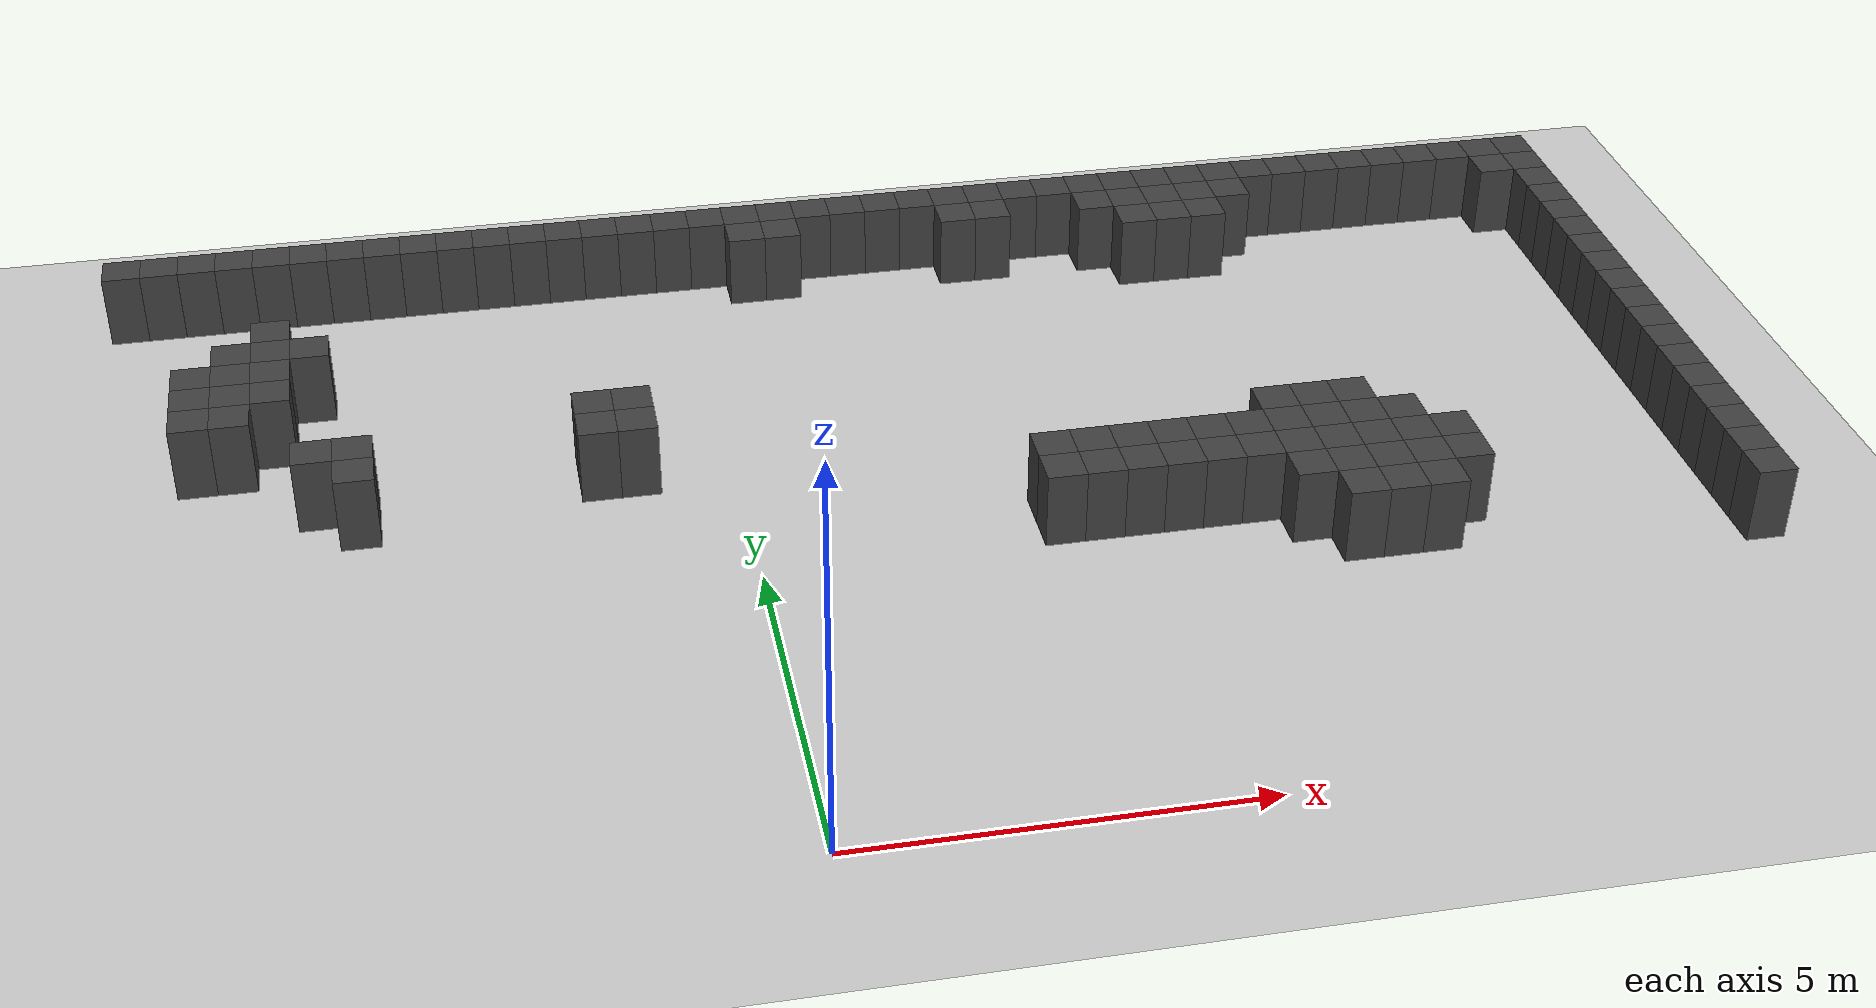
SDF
<sdf version="1.7">
 <world name="map_5009">
  <model name="ground_plane">
   <static>true</static>
   <link name="link">
    <collision name="collision">
     <geometry><plane><normal>0 0 1</normal><size>200 200</size></plane></geometry>
    </collision>
    <visual name="visual">
     <geometry><plane><normal>0 0 1</normal><size>200 200</size></plane></geometry>
     <material><ambient>0.8 0.8 0.8 1</ambient><diffuse>0.8 0.8 0.8 1</diffuse></material>
    </visual>
   </link>
  </model>
  <model name="maze_environment">
   <static>true</static>
   <link name="wall_9">
    <pose>-7.750 12.250 0.500 0 0 0</pose>
    <collision name="col"><geometry><box><size>0.5 0.5 1.0</size></box></geometry></collision>
    <visual name="vis">
     <geometry><box><size>0.5 0.5 1.0</size></box></geometry>
     <material><ambient>0.15 0.15 0.15 1</ambient><diffuse>0.25 0.25 0.25 1</diffuse></material>
    </visual>
   </link>
   <link name="wall_10">
    <pose>-7.250 12.250 0.500 0 0 0</pose>
    <collision name="col"><geometry><box><size>0.5 0.5 1.0</size></box></geometry></collision>
    <visual name="vis">
     <geometry><box><size>0.5 0.5 1.0</size></box></geometry>
     <material><ambient>0.15 0.15 0.15 1</ambient><diffuse>0.25 0.25 0.25 1</diffuse></material>
    </visual>
   </link>
   <link name="wall_11">
    <pose>-6.750 12.250 0.500 0 0 0</pose>
    <collision name="col"><geometry><box><size>0.5 0.5 1.0</size></box></geometry></collision>
    <visual name="vis">
     <geometry><box><size>0.5 0.5 1.0</size></box></geometry>
     <material><ambient>0.15 0.15 0.15 1</ambient><diffuse>0.25 0.25 0.25 1</diffuse></material>
    </visual>
   </link>
   <link name="wall_12">
    <pose>-6.250 12.250 0.500 0 0 0</pose>
    <collision name="col"><geometry><box><size>0.5 0.5 1.0</size></box></geometry></collision>
    <visual name="vis">
     <geometry><box><size>0.5 0.5 1.0</size></box></geometry>
     <material><ambient>0.15 0.15 0.15 1</ambient><diffuse>0.25 0.25 0.25 1</diffuse></material>
    </visual>
   </link>
   <link name="wall_13">
    <pose>-5.750 12.250 0.500 0 0 0</pose>
    <collision name="col"><geometry><box><size>0.5 0.5 1.0</size></box></geometry></collision>
    <visual name="vis">
     <geometry><box><size>0.5 0.5 1.0</size></box></geometry>
     <material><ambient>0.15 0.15 0.15 1</ambient><diffuse>0.25 0.25 0.25 1</diffuse></material>
    </visual>
   </link>
   <link name="wall_14">
    <pose>-5.250 12.250 0.500 0 0 0</pose>
    <collision name="col"><geometry><box><size>0.5 0.5 1.0</size></box></geometry></collision>
    <visual name="vis">
     <geometry><box><size>0.5 0.5 1.0</size></box></geometry>
     <material><ambient>0.15 0.15 0.15 1</ambient><diffuse>0.25 0.25 0.25 1</diffuse></material>
    </visual>
   </link>
   <link name="wall_15">
    <pose>-4.750 12.250 0.500 0 0 0</pose>
    <collision name="col"><geometry><box><size>0.5 0.5 1.0</size></box></geometry></collision>
    <visual name="vis">
     <geometry><box><size>0.5 0.5 1.0</size></box></geometry>
     <material><ambient>0.15 0.15 0.15 1</ambient><diffuse>0.25 0.25 0.25 1</diffuse></material>
    </visual>
   </link>
   <link name="wall_16">
    <pose>-4.250 12.250 0.500 0 0 0</pose>
    <collision name="col"><geometry><box><size>0.5 0.5 1.0</size></box></geometry></collision>
    <visual name="vis">
     <geometry><box><size>0.5 0.5 1.0</size></box></geometry>
     <material><ambient>0.15 0.15 0.15 1</ambient><diffuse>0.25 0.25 0.25 1</diffuse></material>
    </visual>
   </link>
   <link name="wall_17">
    <pose>-3.750 12.250 0.500 0 0 0</pose>
    <collision name="col"><geometry><box><size>0.5 0.5 1.0</size></box></geometry></collision>
    <visual name="vis">
     <geometry><box><size>0.5 0.5 1.0</size></box></geometry>
     <material><ambient>0.15 0.15 0.15 1</ambient><diffuse>0.25 0.25 0.25 1</diffuse></material>
    </visual>
   </link>
   <link name="wall_18">
    <pose>-3.250 12.250 0.500 0 0 0</pose>
    <collision name="col"><geometry><box><size>0.5 0.5 1.0</size></box></geometry></collision>
    <visual name="vis">
     <geometry><box><size>0.5 0.5 1.0</size></box></geometry>
     <material><ambient>0.15 0.15 0.15 1</ambient><diffuse>0.25 0.25 0.25 1</diffuse></material>
    </visual>
   </link>
   <link name="wall_19">
    <pose>-2.750 12.250 0.500 0 0 0</pose>
    <collision name="col"><geometry><box><size>0.5 0.5 1.0</size></box></geometry></collision>
    <visual name="vis">
     <geometry><box><size>0.5 0.5 1.0</size></box></geometry>
     <material><ambient>0.15 0.15 0.15 1</ambient><diffuse>0.25 0.25 0.25 1</diffuse></material>
    </visual>
   </link>
   <link name="wall_20">
    <pose>-2.250 12.250 0.500 0 0 0</pose>
    <collision name="col"><geometry><box><size>0.5 0.5 1.0</size></box></geometry></collision>
    <visual name="vis">
     <geometry><box><size>0.5 0.5 1.0</size></box></geometry>
     <material><ambient>0.15 0.15 0.15 1</ambient><diffuse>0.25 0.25 0.25 1</diffuse></material>
    </visual>
   </link>
   <link name="wall_21">
    <pose>-1.750 12.250 0.500 0 0 0</pose>
    <collision name="col"><geometry><box><size>0.5 0.5 1.0</size></box></geometry></collision>
    <visual name="vis">
     <geometry><box><size>0.5 0.5 1.0</size></box></geometry>
     <material><ambient>0.15 0.15 0.15 1</ambient><diffuse>0.25 0.25 0.25 1</diffuse></material>
    </visual>
   </link>
   <link name="wall_22">
    <pose>-1.250 12.250 0.500 0 0 0</pose>
    <collision name="col"><geometry><box><size>0.5 0.5 1.0</size></box></geometry></collision>
    <visual name="vis">
     <geometry><box><size>0.5 0.5 1.0</size></box></geometry>
     <material><ambient>0.15 0.15 0.15 1</ambient><diffuse>0.25 0.25 0.25 1</diffuse></material>
    </visual>
   </link>
   <link name="wall_23">
    <pose>-0.750 12.250 0.500 0 0 0</pose>
    <collision name="col"><geometry><box><size>0.5 0.5 1.0</size></box></geometry></collision>
    <visual name="vis">
     <geometry><box><size>0.5 0.5 1.0</size></box></geometry>
     <material><ambient>0.15 0.15 0.15 1</ambient><diffuse>0.25 0.25 0.25 1</diffuse></material>
    </visual>
   </link>
   <link name="wall_24">
    <pose>-0.250 12.250 0.500 0 0 0</pose>
    <collision name="col"><geometry><box><size>0.5 0.5 1.0</size></box></geometry></collision>
    <visual name="vis">
     <geometry><box><size>0.5 0.5 1.0</size></box></geometry>
     <material><ambient>0.15 0.15 0.15 1</ambient><diffuse>0.25 0.25 0.25 1</diffuse></material>
    </visual>
   </link>
   <link name="wall_25">
    <pose>0.250 12.250 0.500 0 0 0</pose>
    <collision name="col"><geometry><box><size>0.5 0.5 1.0</size></box></geometry></collision>
    <visual name="vis">
     <geometry><box><size>0.5 0.5 1.0</size></box></geometry>
     <material><ambient>0.15 0.15 0.15 1</ambient><diffuse>0.25 0.25 0.25 1</diffuse></material>
    </visual>
   </link>
   <link name="wall_26">
    <pose>0.750 12.250 0.500 0 0 0</pose>
    <collision name="col"><geometry><box><size>0.5 0.5 1.0</size></box></geometry></collision>
    <visual name="vis">
     <geometry><box><size>0.5 0.5 1.0</size></box></geometry>
     <material><ambient>0.15 0.15 0.15 1</ambient><diffuse>0.25 0.25 0.25 1</diffuse></material>
    </visual>
   </link>
   <link name="wall_27">
    <pose>1.250 12.250 0.500 0 0 0</pose>
    <collision name="col"><geometry><box><size>0.5 0.5 1.0</size></box></geometry></collision>
    <visual name="vis">
     <geometry><box><size>0.5 0.5 1.0</size></box></geometry>
     <material><ambient>0.15 0.15 0.15 1</ambient><diffuse>0.25 0.25 0.25 1</diffuse></material>
    </visual>
   </link>
   <link name="wall_28">
    <pose>1.750 12.250 0.500 0 0 0</pose>
    <collision name="col"><geometry><box><size>0.5 0.5 1.0</size></box></geometry></collision>
    <visual name="vis">
     <geometry><box><size>0.5 0.5 1.0</size></box></geometry>
     <material><ambient>0.15 0.15 0.15 1</ambient><diffuse>0.25 0.25 0.25 1</diffuse></material>
    </visual>
   </link>
   <link name="wall_29">
    <pose>2.250 12.250 0.500 0 0 0</pose>
    <collision name="col"><geometry><box><size>0.5 0.5 1.0</size></box></geometry></collision>
    <visual name="vis">
     <geometry><box><size>0.5 0.5 1.0</size></box></geometry>
     <material><ambient>0.15 0.15 0.15 1</ambient><diffuse>0.25 0.25 0.25 1</diffuse></material>
    </visual>
   </link>
   <link name="wall_30">
    <pose>2.750 12.250 0.500 0 0 0</pose>
    <collision name="col"><geometry><box><size>0.5 0.5 1.0</size></box></geometry></collision>
    <visual name="vis">
     <geometry><box><size>0.5 0.5 1.0</size></box></geometry>
     <material><ambient>0.15 0.15 0.15 1</ambient><diffuse>0.25 0.25 0.25 1</diffuse></material>
    </visual>
   </link>
   <link name="wall_31">
    <pose>3.250 12.250 0.500 0 0 0</pose>
    <collision name="col"><geometry><box><size>0.5 0.5 1.0</size></box></geometry></collision>
    <visual name="vis">
     <geometry><box><size>0.5 0.5 1.0</size></box></geometry>
     <material><ambient>0.15 0.15 0.15 1</ambient><diffuse>0.25 0.25 0.25 1</diffuse></material>
    </visual>
   </link>
   <link name="wall_32">
    <pose>3.750 12.250 0.500 0 0 0</pose>
    <collision name="col"><geometry><box><size>0.5 0.5 1.0</size></box></geometry></collision>
    <visual name="vis">
     <geometry><box><size>0.5 0.5 1.0</size></box></geometry>
     <material><ambient>0.15 0.15 0.15 1</ambient><diffuse>0.25 0.25 0.25 1</diffuse></material>
    </visual>
   </link>
   <link name="wall_33">
    <pose>4.250 12.250 0.500 0 0 0</pose>
    <collision name="col"><geometry><box><size>0.5 0.5 1.0</size></box></geometry></collision>
    <visual name="vis">
     <geometry><box><size>0.5 0.5 1.0</size></box></geometry>
     <material><ambient>0.15 0.15 0.15 1</ambient><diffuse>0.25 0.25 0.25 1</diffuse></material>
    </visual>
   </link>
   <link name="wall_34">
    <pose>4.750 12.250 0.500 0 0 0</pose>
    <collision name="col"><geometry><box><size>0.5 0.5 1.0</size></box></geometry></collision>
    <visual name="vis">
     <geometry><box><size>0.5 0.5 1.0</size></box></geometry>
     <material><ambient>0.15 0.15 0.15 1</ambient><diffuse>0.25 0.25 0.25 1</diffuse></material>
    </visual>
   </link>
   <link name="wall_35">
    <pose>5.250 12.250 0.500 0 0 0</pose>
    <collision name="col"><geometry><box><size>0.5 0.5 1.0</size></box></geometry></collision>
    <visual name="vis">
     <geometry><box><size>0.5 0.5 1.0</size></box></geometry>
     <material><ambient>0.15 0.15 0.15 1</ambient><diffuse>0.25 0.25 0.25 1</diffuse></material>
    </visual>
   </link>
   <link name="wall_36">
    <pose>5.750 12.250 0.500 0 0 0</pose>
    <collision name="col"><geometry><box><size>0.5 0.5 1.0</size></box></geometry></collision>
    <visual name="vis">
     <geometry><box><size>0.5 0.5 1.0</size></box></geometry>
     <material><ambient>0.15 0.15 0.15 1</ambient><diffuse>0.25 0.25 0.25 1</diffuse></material>
    </visual>
   </link>
   <link name="wall_37">
    <pose>6.250 12.250 0.500 0 0 0</pose>
    <collision name="col"><geometry><box><size>0.5 0.5 1.0</size></box></geometry></collision>
    <visual name="vis">
     <geometry><box><size>0.5 0.5 1.0</size></box></geometry>
     <material><ambient>0.15 0.15 0.15 1</ambient><diffuse>0.25 0.25 0.25 1</diffuse></material>
    </visual>
   </link>
   <link name="wall_38">
    <pose>6.750 12.250 0.500 0 0 0</pose>
    <collision name="col"><geometry><box><size>0.5 0.5 1.0</size></box></geometry></collision>
    <visual name="vis">
     <geometry><box><size>0.5 0.5 1.0</size></box></geometry>
     <material><ambient>0.15 0.15 0.15 1</ambient><diffuse>0.25 0.25 0.25 1</diffuse></material>
    </visual>
   </link>
   <link name="wall_39">
    <pose>7.250 12.250 0.500 0 0 0</pose>
    <collision name="col"><geometry><box><size>0.5 0.5 1.0</size></box></geometry></collision>
    <visual name="vis">
     <geometry><box><size>0.5 0.5 1.0</size></box></geometry>
     <material><ambient>0.15 0.15 0.15 1</ambient><diffuse>0.25 0.25 0.25 1</diffuse></material>
    </visual>
   </link>
   <link name="wall_40">
    <pose>7.750 12.250 0.500 0 0 0</pose>
    <collision name="col"><geometry><box><size>0.5 0.5 1.0</size></box></geometry></collision>
    <visual name="vis">
     <geometry><box><size>0.5 0.5 1.0</size></box></geometry>
     <material><ambient>0.15 0.15 0.15 1</ambient><diffuse>0.25 0.25 0.25 1</diffuse></material>
    </visual>
   </link>
   <link name="wall_41">
    <pose>8.250 12.250 0.500 0 0 0</pose>
    <collision name="col"><geometry><box><size>0.5 0.5 1.0</size></box></geometry></collision>
    <visual name="vis">
     <geometry><box><size>0.5 0.5 1.0</size></box></geometry>
     <material><ambient>0.15 0.15 0.15 1</ambient><diffuse>0.25 0.25 0.25 1</diffuse></material>
    </visual>
   </link>
   <link name="wall_42">
    <pose>8.750 12.250 0.500 0 0 0</pose>
    <collision name="col"><geometry><box><size>0.5 0.5 1.0</size></box></geometry></collision>
    <visual name="vis">
     <geometry><box><size>0.5 0.5 1.0</size></box></geometry>
     <material><ambient>0.15 0.15 0.15 1</ambient><diffuse>0.25 0.25 0.25 1</diffuse></material>
    </visual>
   </link>
   <link name="wall_43">
    <pose>9.250 12.250 0.500 0 0 0</pose>
    <collision name="col"><geometry><box><size>0.5 0.5 1.0</size></box></geometry></collision>
    <visual name="vis">
     <geometry><box><size>0.5 0.5 1.0</size></box></geometry>
     <material><ambient>0.15 0.15 0.15 1</ambient><diffuse>0.25 0.25 0.25 1</diffuse></material>
    </visual>
   </link>
   <link name="wall_44">
    <pose>9.750 12.250 0.500 0 0 0</pose>
    <collision name="col"><geometry><box><size>0.5 0.5 1.0</size></box></geometry></collision>
    <visual name="vis">
     <geometry><box><size>0.5 0.5 1.0</size></box></geometry>
     <material><ambient>0.15 0.15 0.15 1</ambient><diffuse>0.25 0.25 0.25 1</diffuse></material>
    </visual>
   </link>
   <link name="wall_45">
    <pose>10.250 12.250 0.500 0 0 0</pose>
    <collision name="col"><geometry><box><size>0.5 0.5 1.0</size></box></geometry></collision>
    <visual name="vis">
     <geometry><box><size>0.5 0.5 1.0</size></box></geometry>
     <material><ambient>0.15 0.15 0.15 1</ambient><diffuse>0.25 0.25 0.25 1</diffuse></material>
    </visual>
   </link>
   <link name="wall_46">
    <pose>10.750 12.250 0.500 0 0 0</pose>
    <collision name="col"><geometry><box><size>0.5 0.5 1.0</size></box></geometry></collision>
    <visual name="vis">
     <geometry><box><size>0.5 0.5 1.0</size></box></geometry>
     <material><ambient>0.15 0.15 0.15 1</ambient><diffuse>0.25 0.25 0.25 1</diffuse></material>
    </visual>
   </link>
   <link name="wall_47">
    <pose>11.250 12.250 0.500 0 0 0</pose>
    <collision name="col"><geometry><box><size>0.5 0.5 1.0</size></box></geometry></collision>
    <visual name="vis">
     <geometry><box><size>0.5 0.5 1.0</size></box></geometry>
     <material><ambient>0.15 0.15 0.15 1</ambient><diffuse>0.25 0.25 0.25 1</diffuse></material>
    </visual>
   </link>
   <link name="wall_48">
    <pose>11.750 12.250 0.500 0 0 0</pose>
    <collision name="col"><geometry><box><size>0.5 0.5 1.0</size></box></geometry></collision>
    <visual name="vis">
     <geometry><box><size>0.5 0.5 1.0</size></box></geometry>
     <material><ambient>0.15 0.15 0.15 1</ambient><diffuse>0.25 0.25 0.25 1</diffuse></material>
    </visual>
   </link>
   <link name="wall_49">
    <pose>12.250 12.250 0.500 0 0 0</pose>
    <collision name="col"><geometry><box><size>0.5 0.5 1.0</size></box></geometry></collision>
    <visual name="vis">
     <geometry><box><size>0.5 0.5 1.0</size></box></geometry>
     <material><ambient>0.15 0.15 0.15 1</ambient><diffuse>0.25 0.25 0.25 1</diffuse></material>
    </visual>
   </link>
   <link name="wall_51">
    <pose>0.750 11.750 0.500 0 0 0</pose>
    <collision name="col"><geometry><box><size>0.5 0.5 1.0</size></box></geometry></collision>
    <visual name="vis">
     <geometry><box><size>0.5 0.5 1.0</size></box></geometry>
     <material><ambient>0.15 0.15 0.15 1</ambient><diffuse>0.25 0.25 0.25 1</diffuse></material>
    </visual>
   </link>
   <link name="wall_52">
    <pose>1.250 11.750 0.500 0 0 0</pose>
    <collision name="col"><geometry><box><size>0.5 0.5 1.0</size></box></geometry></collision>
    <visual name="vis">
     <geometry><box><size>0.5 0.5 1.0</size></box></geometry>
     <material><ambient>0.15 0.15 0.15 1</ambient><diffuse>0.25 0.25 0.25 1</diffuse></material>
    </visual>
   </link>
   <link name="wall_53">
    <pose>3.750 11.750 0.500 0 0 0</pose>
    <collision name="col"><geometry><box><size>0.5 0.5 1.0</size></box></geometry></collision>
    <visual name="vis">
     <geometry><box><size>0.5 0.5 1.0</size></box></geometry>
     <material><ambient>0.15 0.15 0.15 1</ambient><diffuse>0.25 0.25 0.25 1</diffuse></material>
    </visual>
   </link>
   <link name="wall_54">
    <pose>4.250 11.750 0.500 0 0 0</pose>
    <collision name="col"><geometry><box><size>0.5 0.5 1.0</size></box></geometry></collision>
    <visual name="vis">
     <geometry><box><size>0.5 0.5 1.0</size></box></geometry>
     <material><ambient>0.15 0.15 0.15 1</ambient><diffuse>0.25 0.25 0.25 1</diffuse></material>
    </visual>
   </link>
   <link name="wall_55">
    <pose>5.750 11.750 0.500 0 0 0</pose>
    <collision name="col"><geometry><box><size>0.5 0.5 1.0</size></box></geometry></collision>
    <visual name="vis">
     <geometry><box><size>0.5 0.5 1.0</size></box></geometry>
     <material><ambient>0.15 0.15 0.15 1</ambient><diffuse>0.25 0.25 0.25 1</diffuse></material>
    </visual>
   </link>
   <link name="wall_56">
    <pose>6.250 11.750 0.500 0 0 0</pose>
    <collision name="col"><geometry><box><size>0.5 0.5 1.0</size></box></geometry></collision>
    <visual name="vis">
     <geometry><box><size>0.5 0.5 1.0</size></box></geometry>
     <material><ambient>0.15 0.15 0.15 1</ambient><diffuse>0.25 0.25 0.25 1</diffuse></material>
    </visual>
   </link>
   <link name="wall_57">
    <pose>6.750 11.750 0.500 0 0 0</pose>
    <collision name="col"><geometry><box><size>0.5 0.5 1.0</size></box></geometry></collision>
    <visual name="vis">
     <geometry><box><size>0.5 0.5 1.0</size></box></geometry>
     <material><ambient>0.15 0.15 0.15 1</ambient><diffuse>0.25 0.25 0.25 1</diffuse></material>
    </visual>
   </link>
   <link name="wall_58">
    <pose>7.250 11.750 0.500 0 0 0</pose>
    <collision name="col"><geometry><box><size>0.5 0.5 1.0</size></box></geometry></collision>
    <visual name="vis">
     <geometry><box><size>0.5 0.5 1.0</size></box></geometry>
     <material><ambient>0.15 0.15 0.15 1</ambient><diffuse>0.25 0.25 0.25 1</diffuse></material>
    </visual>
   </link>
   <link name="wall_59">
    <pose>7.750 11.750 0.500 0 0 0</pose>
    <collision name="col"><geometry><box><size>0.5 0.5 1.0</size></box></geometry></collision>
    <visual name="vis">
     <geometry><box><size>0.5 0.5 1.0</size></box></geometry>
     <material><ambient>0.15 0.15 0.15 1</ambient><diffuse>0.25 0.25 0.25 1</diffuse></material>
    </visual>
   </link>
   <link name="wall_60">
    <pose>11.750 11.750 0.500 0 0 0</pose>
    <collision name="col"><geometry><box><size>0.5 0.5 1.0</size></box></geometry></collision>
    <visual name="vis">
     <geometry><box><size>0.5 0.5 1.0</size></box></geometry>
     <material><ambient>0.15 0.15 0.15 1</ambient><diffuse>0.25 0.25 0.25 1</diffuse></material>
    </visual>
   </link>
   <link name="wall_61">
    <pose>12.250 11.750 0.500 0 0 0</pose>
    <collision name="col"><geometry><box><size>0.5 0.5 1.0</size></box></geometry></collision>
    <visual name="vis">
     <geometry><box><size>0.5 0.5 1.0</size></box></geometry>
     <material><ambient>0.15 0.15 0.15 1</ambient><diffuse>0.25 0.25 0.25 1</diffuse></material>
    </visual>
   </link>
   <link name="wall_63">
    <pose>6.250 11.250 0.500 0 0 0</pose>
    <collision name="col"><geometry><box><size>0.5 0.5 1.0</size></box></geometry></collision>
    <visual name="vis">
     <geometry><box><size>0.5 0.5 1.0</size></box></geometry>
     <material><ambient>0.15 0.15 0.15 1</ambient><diffuse>0.25 0.25 0.25 1</diffuse></material>
    </visual>
   </link>
   <link name="wall_64">
    <pose>6.750 11.250 0.500 0 0 0</pose>
    <collision name="col"><geometry><box><size>0.5 0.5 1.0</size></box></geometry></collision>
    <visual name="vis">
     <geometry><box><size>0.5 0.5 1.0</size></box></geometry>
     <material><ambient>0.15 0.15 0.15 1</ambient><diffuse>0.25 0.25 0.25 1</diffuse></material>
    </visual>
   </link>
   <link name="wall_65">
    <pose>7.250 11.250 0.500 0 0 0</pose>
    <collision name="col"><geometry><box><size>0.5 0.5 1.0</size></box></geometry></collision>
    <visual name="vis">
     <geometry><box><size>0.5 0.5 1.0</size></box></geometry>
     <material><ambient>0.15 0.15 0.15 1</ambient><diffuse>0.25 0.25 0.25 1</diffuse></material>
    </visual>
   </link>
   <link name="wall_66">
    <pose>12.250 11.250 0.500 0 0 0</pose>
    <collision name="col"><geometry><box><size>0.5 0.5 1.0</size></box></geometry></collision>
    <visual name="vis">
     <geometry><box><size>0.5 0.5 1.0</size></box></geometry>
     <material><ambient>0.15 0.15 0.15 1</ambient><diffuse>0.25 0.25 0.25 1</diffuse></material>
    </visual>
   </link>
   <link name="wall_68">
    <pose>12.250 10.750 0.500 0 0 0</pose>
    <collision name="col"><geometry><box><size>0.5 0.5 1.0</size></box></geometry></collision>
    <visual name="vis">
     <geometry><box><size>0.5 0.5 1.0</size></box></geometry>
     <material><ambient>0.15 0.15 0.15 1</ambient><diffuse>0.25 0.25 0.25 1</diffuse></material>
    </visual>
   </link>
   <link name="wall_70">
    <pose>-5.750 10.250 0.500 0 0 0</pose>
    <collision name="col"><geometry><box><size>0.5 0.5 1.0</size></box></geometry></collision>
    <visual name="vis">
     <geometry><box><size>0.5 0.5 1.0</size></box></geometry>
     <material><ambient>0.15 0.15 0.15 1</ambient><diffuse>0.25 0.25 0.25 1</diffuse></material>
    </visual>
   </link>
   <link name="wall_71">
    <pose>12.250 10.250 0.500 0 0 0</pose>
    <collision name="col"><geometry><box><size>0.5 0.5 1.0</size></box></geometry></collision>
    <visual name="vis">
     <geometry><box><size>0.5 0.5 1.0</size></box></geometry>
     <material><ambient>0.15 0.15 0.15 1</ambient><diffuse>0.25 0.25 0.25 1</diffuse></material>
    </visual>
   </link>
   <link name="wall_73">
    <pose>-6.250 9.750 0.500 0 0 0</pose>
    <collision name="col"><geometry><box><size>0.5 0.5 1.0</size></box></geometry></collision>
    <visual name="vis">
     <geometry><box><size>0.5 0.5 1.0</size></box></geometry>
     <material><ambient>0.15 0.15 0.15 1</ambient><diffuse>0.25 0.25 0.25 1</diffuse></material>
    </visual>
   </link>
   <link name="wall_74">
    <pose>-5.750 9.750 0.500 0 0 0</pose>
    <collision name="col"><geometry><box><size>0.5 0.5 1.0</size></box></geometry></collision>
    <visual name="vis">
     <geometry><box><size>0.5 0.5 1.0</size></box></geometry>
     <material><ambient>0.15 0.15 0.15 1</ambient><diffuse>0.25 0.25 0.25 1</diffuse></material>
    </visual>
   </link>
   <link name="wall_75">
    <pose>-5.250 9.750 0.500 0 0 0</pose>
    <collision name="col"><geometry><box><size>0.5 0.5 1.0</size></box></geometry></collision>
    <visual name="vis">
     <geometry><box><size>0.5 0.5 1.0</size></box></geometry>
     <material><ambient>0.15 0.15 0.15 1</ambient><diffuse>0.25 0.25 0.25 1</diffuse></material>
    </visual>
   </link>
   <link name="wall_76">
    <pose>12.250 9.750 0.500 0 0 0</pose>
    <collision name="col"><geometry><box><size>0.5 0.5 1.0</size></box></geometry></collision>
    <visual name="vis">
     <geometry><box><size>0.5 0.5 1.0</size></box></geometry>
     <material><ambient>0.15 0.15 0.15 1</ambient><diffuse>0.25 0.25 0.25 1</diffuse></material>
    </visual>
   </link>
   <link name="wall_78">
    <pose>-6.750 9.250 0.500 0 0 0</pose>
    <collision name="col"><geometry><box><size>0.5 0.5 1.0</size></box></geometry></collision>
    <visual name="vis">
     <geometry><box><size>0.5 0.5 1.0</size></box></geometry>
     <material><ambient>0.15 0.15 0.15 1</ambient><diffuse>0.25 0.25 0.25 1</diffuse></material>
    </visual>
   </link>
   <link name="wall_79">
    <pose>-6.250 9.250 0.500 0 0 0</pose>
    <collision name="col"><geometry><box><size>0.5 0.5 1.0</size></box></geometry></collision>
    <visual name="vis">
     <geometry><box><size>0.5 0.5 1.0</size></box></geometry>
     <material><ambient>0.15 0.15 0.15 1</ambient><diffuse>0.25 0.25 0.25 1</diffuse></material>
    </visual>
   </link>
   <link name="wall_80">
    <pose>-5.750 9.250 0.500 0 0 0</pose>
    <collision name="col"><geometry><box><size>0.5 0.5 1.0</size></box></geometry></collision>
    <visual name="vis">
     <geometry><box><size>0.5 0.5 1.0</size></box></geometry>
     <material><ambient>0.15 0.15 0.15 1</ambient><diffuse>0.25 0.25 0.25 1</diffuse></material>
    </visual>
   </link>
   <link name="wall_81">
    <pose>12.250 9.250 0.500 0 0 0</pose>
    <collision name="col"><geometry><box><size>0.5 0.5 1.0</size></box></geometry></collision>
    <visual name="vis">
     <geometry><box><size>0.5 0.5 1.0</size></box></geometry>
     <material><ambient>0.15 0.15 0.15 1</ambient><diffuse>0.25 0.25 0.25 1</diffuse></material>
    </visual>
   </link>
   <link name="wall_83">
    <pose>-6.750 8.750 0.500 0 0 0</pose>
    <collision name="col"><geometry><box><size>0.5 0.5 1.0</size></box></geometry></collision>
    <visual name="vis">
     <geometry><box><size>0.5 0.5 1.0</size></box></geometry>
     <material><ambient>0.15 0.15 0.15 1</ambient><diffuse>0.25 0.25 0.25 1</diffuse></material>
    </visual>
   </link>
   <link name="wall_84">
    <pose>-6.250 8.750 0.500 0 0 0</pose>
    <collision name="col"><geometry><box><size>0.5 0.5 1.0</size></box></geometry></collision>
    <visual name="vis">
     <geometry><box><size>0.5 0.5 1.0</size></box></geometry>
     <material><ambient>0.15 0.15 0.15 1</ambient><diffuse>0.25 0.25 0.25 1</diffuse></material>
    </visual>
   </link>
   <link name="wall_85">
    <pose>-5.750 8.750 0.500 0 0 0</pose>
    <collision name="col"><geometry><box><size>0.5 0.5 1.0</size></box></geometry></collision>
    <visual name="vis">
     <geometry><box><size>0.5 0.5 1.0</size></box></geometry>
     <material><ambient>0.15 0.15 0.15 1</ambient><diffuse>0.25 0.25 0.25 1</diffuse></material>
    </visual>
   </link>
   <link name="wall_86">
    <pose>12.250 8.750 0.500 0 0 0</pose>
    <collision name="col"><geometry><box><size>0.5 0.5 1.0</size></box></geometry></collision>
    <visual name="vis">
     <geometry><box><size>0.5 0.5 1.0</size></box></geometry>
     <material><ambient>0.15 0.15 0.15 1</ambient><diffuse>0.25 0.25 0.25 1</diffuse></material>
    </visual>
   </link>
   <link name="wall_88">
    <pose>-6.750 8.250 0.500 0 0 0</pose>
    <collision name="col"><geometry><box><size>0.5 0.5 1.0</size></box></geometry></collision>
    <visual name="vis">
     <geometry><box><size>0.5 0.5 1.0</size></box></geometry>
     <material><ambient>0.15 0.15 0.15 1</ambient><diffuse>0.25 0.25 0.25 1</diffuse></material>
    </visual>
   </link>
   <link name="wall_89">
    <pose>-6.250 8.250 0.500 0 0 0</pose>
    <collision name="col"><geometry><box><size>0.5 0.5 1.0</size></box></geometry></collision>
    <visual name="vis">
     <geometry><box><size>0.5 0.5 1.0</size></box></geometry>
     <material><ambient>0.15 0.15 0.15 1</ambient><diffuse>0.25 0.25 0.25 1</diffuse></material>
    </visual>
   </link>
   <link name="wall_90">
    <pose>12.250 8.250 0.500 0 0 0</pose>
    <collision name="col"><geometry><box><size>0.5 0.5 1.0</size></box></geometry></collision>
    <visual name="vis">
     <geometry><box><size>0.5 0.5 1.0</size></box></geometry>
     <material><ambient>0.15 0.15 0.15 1</ambient><diffuse>0.25 0.25 0.25 1</diffuse></material>
    </visual>
   </link>
   <link name="wall_92">
    <pose>-1.750 7.750 0.500 0 0 0</pose>
    <collision name="col"><geometry><box><size>0.5 0.5 1.0</size></box></geometry></collision>
    <visual name="vis">
     <geometry><box><size>0.5 0.5 1.0</size></box></geometry>
     <material><ambient>0.15 0.15 0.15 1</ambient><diffuse>0.25 0.25 0.25 1</diffuse></material>
    </visual>
   </link>
   <link name="wall_93">
    <pose>-1.250 7.750 0.500 0 0 0</pose>
    <collision name="col"><geometry><box><size>0.5 0.5 1.0</size></box></geometry></collision>
    <visual name="vis">
     <geometry><box><size>0.5 0.5 1.0</size></box></geometry>
     <material><ambient>0.15 0.15 0.15 1</ambient><diffuse>0.25 0.25 0.25 1</diffuse></material>
    </visual>
   </link>
   <link name="wall_94">
    <pose>12.250 7.750 0.500 0 0 0</pose>
    <collision name="col"><geometry><box><size>0.5 0.5 1.0</size></box></geometry></collision>
    <visual name="vis">
     <geometry><box><size>0.5 0.5 1.0</size></box></geometry>
     <material><ambient>0.15 0.15 0.15 1</ambient><diffuse>0.25 0.25 0.25 1</diffuse></material>
    </visual>
   </link>
   <link name="wall_96">
    <pose>-5.250 7.250 0.500 0 0 0</pose>
    <collision name="col"><geometry><box><size>0.5 0.5 1.0</size></box></geometry></collision>
    <visual name="vis">
     <geometry><box><size>0.5 0.5 1.0</size></box></geometry>
     <material><ambient>0.15 0.15 0.15 1</ambient><diffuse>0.25 0.25 0.25 1</diffuse></material>
    </visual>
   </link>
   <link name="wall_97">
    <pose>-4.750 7.250 0.500 0 0 0</pose>
    <collision name="col"><geometry><box><size>0.5 0.5 1.0</size></box></geometry></collision>
    <visual name="vis">
     <geometry><box><size>0.5 0.5 1.0</size></box></geometry>
     <material><ambient>0.15 0.15 0.15 1</ambient><diffuse>0.25 0.25 0.25 1</diffuse></material>
    </visual>
   </link>
   <link name="wall_98">
    <pose>-1.750 7.250 0.500 0 0 0</pose>
    <collision name="col"><geometry><box><size>0.5 0.5 1.0</size></box></geometry></collision>
    <visual name="vis">
     <geometry><box><size>0.5 0.5 1.0</size></box></geometry>
     <material><ambient>0.15 0.15 0.15 1</ambient><diffuse>0.25 0.25 0.25 1</diffuse></material>
    </visual>
   </link>
   <link name="wall_99">
    <pose>-1.250 7.250 0.500 0 0 0</pose>
    <collision name="col"><geometry><box><size>0.5 0.5 1.0</size></box></geometry></collision>
    <visual name="vis">
     <geometry><box><size>0.5 0.5 1.0</size></box></geometry>
     <material><ambient>0.15 0.15 0.15 1</ambient><diffuse>0.25 0.25 0.25 1</diffuse></material>
    </visual>
   </link>
   <link name="wall_100">
    <pose>12.250 7.250 0.500 0 0 0</pose>
    <collision name="col"><geometry><box><size>0.5 0.5 1.0</size></box></geometry></collision>
    <visual name="vis">
     <geometry><box><size>0.5 0.5 1.0</size></box></geometry>
     <material><ambient>0.15 0.15 0.15 1</ambient><diffuse>0.25 0.25 0.25 1</diffuse></material>
    </visual>
   </link>
   <link name="wall_102">
    <pose>-4.750 6.750 0.500 0 0 0</pose>
    <collision name="col"><geometry><box><size>0.5 0.5 1.0</size></box></geometry></collision>
    <visual name="vis">
     <geometry><box><size>0.5 0.5 1.0</size></box></geometry>
     <material><ambient>0.15 0.15 0.15 1</ambient><diffuse>0.25 0.25 0.25 1</diffuse></material>
    </visual>
   </link>
   <link name="wall_103">
    <pose>12.250 6.750 0.500 0 0 0</pose>
    <collision name="col"><geometry><box><size>0.5 0.5 1.0</size></box></geometry></collision>
    <visual name="vis">
     <geometry><box><size>0.5 0.5 1.0</size></box></geometry>
     <material><ambient>0.15 0.15 0.15 1</ambient><diffuse>0.25 0.25 0.25 1</diffuse></material>
    </visual>
   </link>
   <link name="wall_105">
    <pose>6.750 6.250 0.500 0 0 0</pose>
    <collision name="col"><geometry><box><size>0.5 0.5 1.0</size></box></geometry></collision>
    <visual name="vis">
     <geometry><box><size>0.5 0.5 1.0</size></box></geometry>
     <material><ambient>0.15 0.15 0.15 1</ambient><diffuse>0.25 0.25 0.25 1</diffuse></material>
    </visual>
   </link>
   <link name="wall_106">
    <pose>7.250 6.250 0.500 0 0 0</pose>
    <collision name="col"><geometry><box><size>0.5 0.5 1.0</size></box></geometry></collision>
    <visual name="vis">
     <geometry><box><size>0.5 0.5 1.0</size></box></geometry>
     <material><ambient>0.15 0.15 0.15 1</ambient><diffuse>0.25 0.25 0.25 1</diffuse></material>
    </visual>
   </link>
   <link name="wall_107">
    <pose>7.750 6.250 0.500 0 0 0</pose>
    <collision name="col"><geometry><box><size>0.5 0.5 1.0</size></box></geometry></collision>
    <visual name="vis">
     <geometry><box><size>0.5 0.5 1.0</size></box></geometry>
     <material><ambient>0.15 0.15 0.15 1</ambient><diffuse>0.25 0.25 0.25 1</diffuse></material>
    </visual>
   </link>
   <link name="wall_108">
    <pose>12.250 6.250 0.500 0 0 0</pose>
    <collision name="col"><geometry><box><size>0.5 0.5 1.0</size></box></geometry></collision>
    <visual name="vis">
     <geometry><box><size>0.5 0.5 1.0</size></box></geometry>
     <material><ambient>0.15 0.15 0.15 1</ambient><diffuse>0.25 0.25 0.25 1</diffuse></material>
    </visual>
   </link>
   <link name="wall_112">
    <pose>3.750 5.750 0.500 0 0 0</pose>
    <collision name="col"><geometry><box><size>0.5 0.5 1.0</size></box></geometry></collision>
    <visual name="vis">
     <geometry><box><size>0.5 0.5 1.0</size></box></geometry>
     <material><ambient>0.15 0.15 0.15 1</ambient><diffuse>0.25 0.25 0.25 1</diffuse></material>
    </visual>
   </link>
   <link name="wall_113">
    <pose>4.250 5.750 0.500 0 0 0</pose>
    <collision name="col"><geometry><box><size>0.5 0.5 1.0</size></box></geometry></collision>
    <visual name="vis">
     <geometry><box><size>0.5 0.5 1.0</size></box></geometry>
     <material><ambient>0.15 0.15 0.15 1</ambient><diffuse>0.25 0.25 0.25 1</diffuse></material>
    </visual>
   </link>
   <link name="wall_114">
    <pose>4.750 5.750 0.500 0 0 0</pose>
    <collision name="col"><geometry><box><size>0.5 0.5 1.0</size></box></geometry></collision>
    <visual name="vis">
     <geometry><box><size>0.5 0.5 1.0</size></box></geometry>
     <material><ambient>0.15 0.15 0.15 1</ambient><diffuse>0.25 0.25 0.25 1</diffuse></material>
    </visual>
   </link>
   <link name="wall_115">
    <pose>5.250 5.750 0.500 0 0 0</pose>
    <collision name="col"><geometry><box><size>0.5 0.5 1.0</size></box></geometry></collision>
    <visual name="vis">
     <geometry><box><size>0.5 0.5 1.0</size></box></geometry>
     <material><ambient>0.15 0.15 0.15 1</ambient><diffuse>0.25 0.25 0.25 1</diffuse></material>
    </visual>
   </link>
   <link name="wall_116">
    <pose>5.750 5.750 0.500 0 0 0</pose>
    <collision name="col"><geometry><box><size>0.5 0.5 1.0</size></box></geometry></collision>
    <visual name="vis">
     <geometry><box><size>0.5 0.5 1.0</size></box></geometry>
     <material><ambient>0.15 0.15 0.15 1</ambient><diffuse>0.25 0.25 0.25 1</diffuse></material>
    </visual>
   </link>
   <link name="wall_117">
    <pose>6.250 5.750 0.500 0 0 0</pose>
    <collision name="col"><geometry><box><size>0.5 0.5 1.0</size></box></geometry></collision>
    <visual name="vis">
     <geometry><box><size>0.5 0.5 1.0</size></box></geometry>
     <material><ambient>0.15 0.15 0.15 1</ambient><diffuse>0.25 0.25 0.25 1</diffuse></material>
    </visual>
   </link>
   <link name="wall_118">
    <pose>6.750 5.750 0.500 0 0 0</pose>
    <collision name="col"><geometry><box><size>0.5 0.5 1.0</size></box></geometry></collision>
    <visual name="vis">
     <geometry><box><size>0.5 0.5 1.0</size></box></geometry>
     <material><ambient>0.15 0.15 0.15 1</ambient><diffuse>0.25 0.25 0.25 1</diffuse></material>
    </visual>
   </link>
   <link name="wall_119">
    <pose>7.250 5.750 0.500 0 0 0</pose>
    <collision name="col"><geometry><box><size>0.5 0.5 1.0</size></box></geometry></collision>
    <visual name="vis">
     <geometry><box><size>0.5 0.5 1.0</size></box></geometry>
     <material><ambient>0.15 0.15 0.15 1</ambient><diffuse>0.25 0.25 0.25 1</diffuse></material>
    </visual>
   </link>
   <link name="wall_120">
    <pose>7.750 5.750 0.500 0 0 0</pose>
    <collision name="col"><geometry><box><size>0.5 0.5 1.0</size></box></geometry></collision>
    <visual name="vis">
     <geometry><box><size>0.5 0.5 1.0</size></box></geometry>
     <material><ambient>0.15 0.15 0.15 1</ambient><diffuse>0.25 0.25 0.25 1</diffuse></material>
    </visual>
   </link>
   <link name="wall_121">
    <pose>8.250 5.750 0.500 0 0 0</pose>
    <collision name="col"><geometry><box><size>0.5 0.5 1.0</size></box></geometry></collision>
    <visual name="vis">
     <geometry><box><size>0.5 0.5 1.0</size></box></geometry>
     <material><ambient>0.15 0.15 0.15 1</ambient><diffuse>0.25 0.25 0.25 1</diffuse></material>
    </visual>
   </link>
   <link name="wall_122">
    <pose>12.250 5.750 0.500 0 0 0</pose>
    <collision name="col"><geometry><box><size>0.5 0.5 1.0</size></box></geometry></collision>
    <visual name="vis">
     <geometry><box><size>0.5 0.5 1.0</size></box></geometry>
     <material><ambient>0.15 0.15 0.15 1</ambient><diffuse>0.25 0.25 0.25 1</diffuse></material>
    </visual>
   </link>
   <link name="wall_128">
    <pose>3.750 5.250 0.500 0 0 0</pose>
    <collision name="col"><geometry><box><size>0.5 0.5 1.0</size></box></geometry></collision>
    <visual name="vis">
     <geometry><box><size>0.5 0.5 1.0</size></box></geometry>
     <material><ambient>0.15 0.15 0.15 1</ambient><diffuse>0.25 0.25 0.25 1</diffuse></material>
    </visual>
   </link>
   <link name="wall_129">
    <pose>4.250 5.250 0.500 0 0 0</pose>
    <collision name="col"><geometry><box><size>0.5 0.5 1.0</size></box></geometry></collision>
    <visual name="vis">
     <geometry><box><size>0.5 0.5 1.0</size></box></geometry>
     <material><ambient>0.15 0.15 0.15 1</ambient><diffuse>0.25 0.25 0.25 1</diffuse></material>
    </visual>
   </link>
   <link name="wall_130">
    <pose>4.750 5.250 0.500 0 0 0</pose>
    <collision name="col"><geometry><box><size>0.5 0.5 1.0</size></box></geometry></collision>
    <visual name="vis">
     <geometry><box><size>0.5 0.5 1.0</size></box></geometry>
     <material><ambient>0.15 0.15 0.15 1</ambient><diffuse>0.25 0.25 0.25 1</diffuse></material>
    </visual>
   </link>
   <link name="wall_131">
    <pose>5.250 5.250 0.500 0 0 0</pose>
    <collision name="col"><geometry><box><size>0.5 0.5 1.0</size></box></geometry></collision>
    <visual name="vis">
     <geometry><box><size>0.5 0.5 1.0</size></box></geometry>
     <material><ambient>0.15 0.15 0.15 1</ambient><diffuse>0.25 0.25 0.25 1</diffuse></material>
    </visual>
   </link>
   <link name="wall_132">
    <pose>5.750 5.250 0.500 0 0 0</pose>
    <collision name="col"><geometry><box><size>0.5 0.5 1.0</size></box></geometry></collision>
    <visual name="vis">
     <geometry><box><size>0.5 0.5 1.0</size></box></geometry>
     <material><ambient>0.15 0.15 0.15 1</ambient><diffuse>0.25 0.25 0.25 1</diffuse></material>
    </visual>
   </link>
   <link name="wall_133">
    <pose>6.250 5.250 0.500 0 0 0</pose>
    <collision name="col"><geometry><box><size>0.5 0.5 1.0</size></box></geometry></collision>
    <visual name="vis">
     <geometry><box><size>0.5 0.5 1.0</size></box></geometry>
     <material><ambient>0.15 0.15 0.15 1</ambient><diffuse>0.25 0.25 0.25 1</diffuse></material>
    </visual>
   </link>
   <link name="wall_134">
    <pose>6.750 5.250 0.500 0 0 0</pose>
    <collision name="col"><geometry><box><size>0.5 0.5 1.0</size></box></geometry></collision>
    <visual name="vis">
     <geometry><box><size>0.5 0.5 1.0</size></box></geometry>
     <material><ambient>0.15 0.15 0.15 1</ambient><diffuse>0.25 0.25 0.25 1</diffuse></material>
    </visual>
   </link>
   <link name="wall_135">
    <pose>7.250 5.250 0.500 0 0 0</pose>
    <collision name="col"><geometry><box><size>0.5 0.5 1.0</size></box></geometry></collision>
    <visual name="vis">
     <geometry><box><size>0.5 0.5 1.0</size></box></geometry>
     <material><ambient>0.15 0.15 0.15 1</ambient><diffuse>0.25 0.25 0.25 1</diffuse></material>
    </visual>
   </link>
   <link name="wall_136">
    <pose>7.750 5.250 0.500 0 0 0</pose>
    <collision name="col"><geometry><box><size>0.5 0.5 1.0</size></box></geometry></collision>
    <visual name="vis">
     <geometry><box><size>0.5 0.5 1.0</size></box></geometry>
     <material><ambient>0.15 0.15 0.15 1</ambient><diffuse>0.25 0.25 0.25 1</diffuse></material>
    </visual>
   </link>
   <link name="wall_137">
    <pose>8.250 5.250 0.500 0 0 0</pose>
    <collision name="col"><geometry><box><size>0.5 0.5 1.0</size></box></geometry></collision>
    <visual name="vis">
     <geometry><box><size>0.5 0.5 1.0</size></box></geometry>
     <material><ambient>0.15 0.15 0.15 1</ambient><diffuse>0.25 0.25 0.25 1</diffuse></material>
    </visual>
   </link>
   <link name="wall_138">
    <pose>8.750 5.250 0.500 0 0 0</pose>
    <collision name="col"><geometry><box><size>0.5 0.5 1.0</size></box></geometry></collision>
    <visual name="vis">
     <geometry><box><size>0.5 0.5 1.0</size></box></geometry>
     <material><ambient>0.15 0.15 0.15 1</ambient><diffuse>0.25 0.25 0.25 1</diffuse></material>
    </visual>
   </link>
   <link name="wall_139">
    <pose>12.250 5.250 0.500 0 0 0</pose>
    <collision name="col"><geometry><box><size>0.5 0.5 1.0</size></box></geometry></collision>
    <visual name="vis">
     <geometry><box><size>0.5 0.5 1.0</size></box></geometry>
     <material><ambient>0.15 0.15 0.15 1</ambient><diffuse>0.25 0.25 0.25 1</diffuse></material>
    </visual>
   </link>
   <link name="wall_145">
    <pose>6.750 4.750 0.500 0 0 0</pose>
    <collision name="col"><geometry><box><size>0.5 0.5 1.0</size></box></geometry></collision>
    <visual name="vis">
     <geometry><box><size>0.5 0.5 1.0</size></box></geometry>
     <material><ambient>0.15 0.15 0.15 1</ambient><diffuse>0.25 0.25 0.25 1</diffuse></material>
    </visual>
   </link>
   <link name="wall_146">
    <pose>7.250 4.750 0.500 0 0 0</pose>
    <collision name="col"><geometry><box><size>0.5 0.5 1.0</size></box></geometry></collision>
    <visual name="vis">
     <geometry><box><size>0.5 0.5 1.0</size></box></geometry>
     <material><ambient>0.15 0.15 0.15 1</ambient><diffuse>0.25 0.25 0.25 1</diffuse></material>
    </visual>
   </link>
   <link name="wall_147">
    <pose>7.750 4.750 0.500 0 0 0</pose>
    <collision name="col"><geometry><box><size>0.5 0.5 1.0</size></box></geometry></collision>
    <visual name="vis">
     <geometry><box><size>0.5 0.5 1.0</size></box></geometry>
     <material><ambient>0.15 0.15 0.15 1</ambient><diffuse>0.25 0.25 0.25 1</diffuse></material>
    </visual>
   </link>
   <link name="wall_148">
    <pose>8.250 4.750 0.500 0 0 0</pose>
    <collision name="col"><geometry><box><size>0.5 0.5 1.0</size></box></geometry></collision>
    <visual name="vis">
     <geometry><box><size>0.5 0.5 1.0</size></box></geometry>
     <material><ambient>0.15 0.15 0.15 1</ambient><diffuse>0.25 0.25 0.25 1</diffuse></material>
    </visual>
   </link>
   <link name="wall_149">
    <pose>8.750 4.750 0.500 0 0 0</pose>
    <collision name="col"><geometry><box><size>0.5 0.5 1.0</size></box></geometry></collision>
    <visual name="vis">
     <geometry><box><size>0.5 0.5 1.0</size></box></geometry>
     <material><ambient>0.15 0.15 0.15 1</ambient><diffuse>0.25 0.25 0.25 1</diffuse></material>
    </visual>
   </link>
   <link name="wall_150">
    <pose>12.250 4.750 0.500 0 0 0</pose>
    <collision name="col"><geometry><box><size>0.5 0.5 1.0</size></box></geometry></collision>
    <visual name="vis">
     <geometry><box><size>0.5 0.5 1.0</size></box></geometry>
     <material><ambient>0.15 0.15 0.15 1</ambient><diffuse>0.25 0.25 0.25 1</diffuse></material>
    </visual>
   </link>
   <link name="wall_157">
    <pose>7.250 4.250 0.500 0 0 0</pose>
    <collision name="col"><geometry><box><size>0.5 0.5 1.0</size></box></geometry></collision>
    <visual name="vis">
     <geometry><box><size>0.5 0.5 1.0</size></box></geometry>
     <material><ambient>0.15 0.15 0.15 1</ambient><diffuse>0.25 0.25 0.25 1</diffuse></material>
    </visual>
   </link>
   <link name="wall_158">
    <pose>7.750 4.250 0.500 0 0 0</pose>
    <collision name="col"><geometry><box><size>0.5 0.5 1.0</size></box></geometry></collision>
    <visual name="vis">
     <geometry><box><size>0.5 0.5 1.0</size></box></geometry>
     <material><ambient>0.15 0.15 0.15 1</ambient><diffuse>0.25 0.25 0.25 1</diffuse></material>
    </visual>
   </link>
   <link name="wall_159">
    <pose>8.250 4.250 0.500 0 0 0</pose>
    <collision name="col"><geometry><box><size>0.5 0.5 1.0</size></box></geometry></collision>
    <visual name="vis">
     <geometry><box><size>0.5 0.5 1.0</size></box></geometry>
     <material><ambient>0.15 0.15 0.15 1</ambient><diffuse>0.25 0.25 0.25 1</diffuse></material>
    </visual>
   </link>
   <link name="wall_160">
    <pose>12.250 4.250 0.500 0 0 0</pose>
    <collision name="col"><geometry><box><size>0.5 0.5 1.0</size></box></geometry></collision>
    <visual name="vis">
     <geometry><box><size>0.5 0.5 1.0</size></box></geometry>
     <material><ambient>0.15 0.15 0.15 1</ambient><diffuse>0.25 0.25 0.25 1</diffuse></material>
    </visual>
   </link>
   <link name="wall_169">
    <pose>12.250 3.750 0.500 0 0 0</pose>
    <collision name="col"><geometry><box><size>0.5 0.5 1.0</size></box></geometry></collision>
    <visual name="vis">
     <geometry><box><size>0.5 0.5 1.0</size></box></geometry>
     <material><ambient>0.15 0.15 0.15 1</ambient><diffuse>0.25 0.25 0.25 1</diffuse></material>
    </visual>
   </link>
  </model>
 </world>
</sdf>
